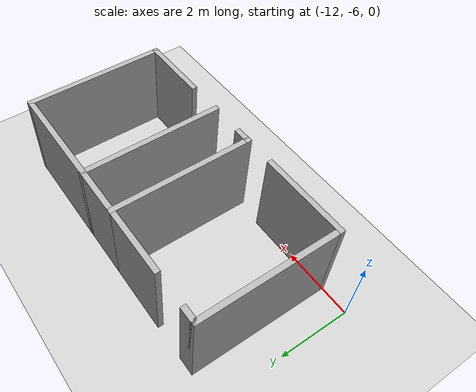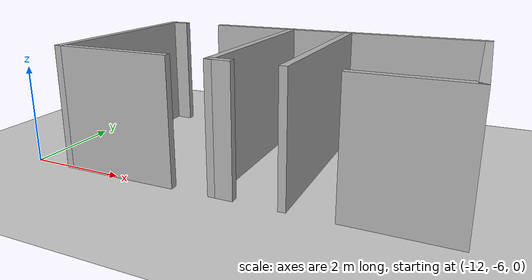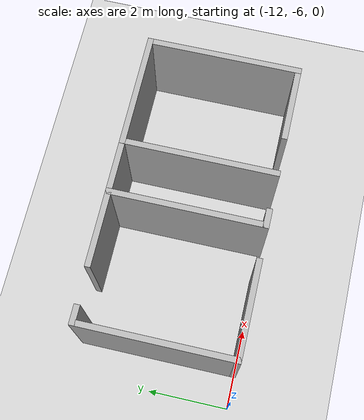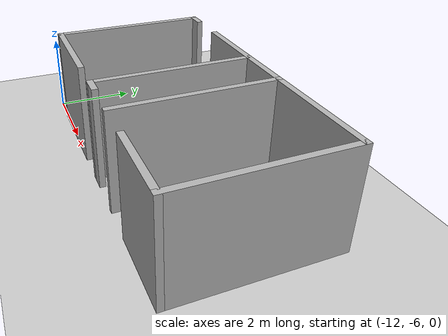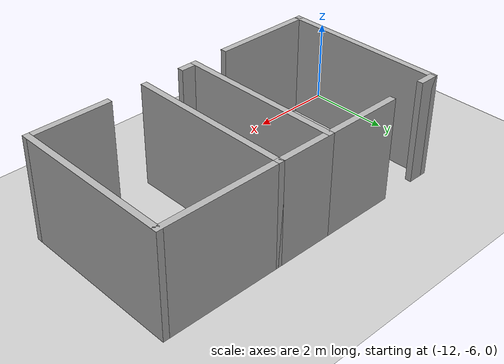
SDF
<?xml version="1.0" ?>
<sdf version="1.8">
  <world name="default">

    <plugin name="gz::sim::systems::Physics" filename="gz-sim-physics-system"/>
    <plugin name="gz::sim::systems::UserCommands" filename="gz-sim-user-commands-system"/>
    <plugin name="gz::sim::systems::SceneBroadcaster" filename="gz-sim-scene-broadcaster-system"/>
    <plugin name="gz::sim::systems::Sensors" filename="gz-sim-sensors-system">
      <render_engine>ogre2</render_engine>
    </plugin>

    <gravity>0 0 -9.8</gravity>
    <magnetic_field>6e-06 2.3e-05 -4.2e-05</magnetic_field>
    <atmosphere type="adiabatic"/>

    <physics type="ode">
      <max_step_size>0.001</max_step_size>
      <real_time_factor>1</real_time_factor>
    </physics>

    <scene>
      <ambient>0.4 0.4 0.4 1</ambient>
      <background>0.7 0.7 0.7 1</background>
      <shadows>true</shadows>
    </scene>

    <light name="sun" type="directional">
      <cast_shadows>true</cast_shadows>
      <pose>0 0 10 0 0 0</pose>
      <diffuse>0.8 0.8 0.8 1</diffuse>
      <specular>0.1 0.1 0.1 1</specular>
      <attenuation>
        <range>1000</range>
        <constant>0.9</constant>
        <linear>0.01</linear>
        <quadratic>0.001</quadratic>
      </attenuation>
      <direction>-0.5 0.5 -1</direction>
    </light>

    <model name="ground_plane">
      <static>true</static>
      <link name="link">
        <collision name="collision">
          <geometry>
            <plane>
              <normal>0 0 1</normal>
              <size>100 100</size>
            </plane>
          </geometry>
          <surface>
            <friction>
              <ode>
                <mu>100</mu>
                <mu2>50</mu2>
              </ode>
            </friction>
          </surface>
        </collision>
        <visual name="visual">
          <geometry>
            <plane>
              <normal>0 0 1</normal>
              <size>100 100</size>
            </plane>
          </geometry>
          <material>
            <ambient>0.8 0.8 0.8 1</ambient>
            <diffuse>0.8 0.8 0.8 1</diffuse>
            <specular>0.8 0.8 0.8 1</specular>
          </material>
        </visual>
      </link>
    </model>

    <model name="cma_escritorio">
      <static>true</static>
      <pose>-7.395 -4.04 0 0 0 0</pose>

      <link name="Wall_11">
        <pose>-1.4 1.93 0 0 0 3.14159</pose>
        <collision name="Wall_11_Collision">
          <pose>0 0 1.25 0 0 0</pose>
          <geometry>
            <box>
              <size>2 0.15 2.5</size>
            </box>
          </geometry>
        </collision>
        <visual name="Wall_11_Visual">
          <pose>0 0 1.25 0 0 0</pose>
          <geometry>
            <box>
              <size>2 0.15 2.5</size>
            </box>
          </geometry>
          <material>
            <ambient>0.7 0.7 0.7 1</ambient>
            <diffuse>0.7 0.7 0.7 1</diffuse>
          </material>
        </visual>
      </link>

      <link name="Wall_2">
        <pose>0.875 0.005 0 0 0 1.5708</pose>
        <collision name="Wall_2_Collision">
          <pose>0 0 1.25 0 0 0</pose>
          <geometry>
            <box>
              <size>4 0.15 2.5</size>
            </box>
          </geometry>
        </collision>
        <visual name="Wall_2_Visual">
          <pose>0 0 1.25 0 0 0</pose>
          <geometry>
            <box>
              <size>4 0.15 2.5</size>
            </box>
          </geometry>
          <material>
            <ambient>0.7 0.7 0.7 1</ambient>
            <diffuse>0.7 0.7 0.7 1</diffuse>
          </material>
        </visual>
      </link>

      <link name="Wall_25">
        <pose>-2.55 -1.93 0 0 0 3.14159</pose>
        <collision name="Wall_25_Collision">
          <pose>0 0 1.25 0 0 0</pose>
          <geometry>
            <box>
              <size>2.5 0.15 2.5</size>
            </box>
          </geometry>
        </collision>
        <visual name="Wall_25_Visual">
          <pose>0 0 1.25 0 0 0</pose>
          <geometry>
            <box>
              <size>2.5 0.15 2.5</size>
            </box>
          </geometry>
          <material>
            <ambient>0.7 0.7 0.7 1</ambient>
            <diffuse>0.7 0.7 0.7 1</diffuse>
          </material>
        </visual>
      </link>

      <link name="Wall_26">
        <pose>-3.725 -0.005 0 0 0 1.5708</pose>
        <collision name="Wall_26_Collision">
          <pose>0 0 1.25 0 0 0</pose>
          <geometry>
            <box>
              <size>4 0.15 2.5</size>
            </box>
          </geometry>
        </collision>
        <visual name="Wall_26_Visual">
          <pose>0 0 1.25 0 0 0</pose>
          <geometry>
            <box>
              <size>4 0.15 2.5</size>
            </box>
          </geometry>
          <material>
            <ambient>0.7 0.7 0.7 1</ambient>
            <diffuse>0.7 0.7 0.7 1</diffuse>
          </material>
        </visual>
      </link>

      <link name="Wall_27">
        <pose>-3.55 1.92 0 0 0 0</pose>
        <collision name="Wall_27_Collision">
          <pose>0 0 1.25 0 0 0</pose>
          <geometry>
            <box>
              <size>0.5 0.15 2.5</size>
            </box>
          </geometry>
        </collision>
        <visual name="Wall_27_Visual">
          <pose>0 0 1.25 0 0 0</pose>
          <geometry>
            <box>
              <size>0.5 0.15 2.5</size>
            </box>
          </geometry>
          <material>
            <ambient>0.7 0.7 0.7 1</ambient>
            <diffuse>0.7 0.7 0.7 1</diffuse>
          </material>
        </visual>
      </link>

      <link name="Wall_3">
        <pose>2.3 1.93 0 0 0 0</pose>
        <collision name="Wall_3_Collision">
          <pose>0 0 1.25 0 0 0</pose>
          <geometry>
            <box>
              <size>3 0.15 2.5</size>
            </box>
          </geometry>
        </collision>
        <visual name="Wall_3_Visual">
          <pose>0 0 1.25 0 0 0</pose>
          <geometry>
            <box>
              <size>3 0.15 2.5</size>
            </box>
          </geometry>
          <material>
            <ambient>0.7 0.7 0.7 1</ambient>
            <diffuse>0.7 0.7 0.7 1</diffuse>
          </material>
        </visual>
      </link>

      <link name="Wall_4">
        <pose>3.725 0.005 0 0 0 -1.5708</pose>
        <collision name="Wall_4_Collision">
          <pose>0 0 1.25 0 0 0</pose>
          <geometry>
            <box>
              <size>4 0.15 2.5</size>
            </box>
          </geometry>
        </collision>
        <visual name="Wall_4_Visual">
          <pose>0 0 1.25 0 0 0</pose>
          <geometry>
            <box>
              <size>4 0.15 2.5</size>
            </box>
          </geometry>
          <material>
            <ambient>0.7 0.7 0.7 1</ambient>
            <diffuse>0.7 0.7 0.7 1</diffuse>
          </material>
        </visual>
      </link>

      <link name="Wall_5">
        <pose>2.8 -1.92 0 0 0 3.14159</pose>
        <collision name="Wall_5_Collision">
          <pose>0 0 1.25 0 0 0</pose>
          <geometry>
            <box>
              <size>2 0.15 2.5</size>
            </box>
          </geometry>
        </collision>
        <visual name="Wall_5_Visual">
          <pose>0 0 1.25 0 0 0</pose>
          <geometry>
            <box>
              <size>2 0.15 2.5</size>
            </box>
          </geometry>
          <material>
            <ambient>0.7 0.7 0.7 1</ambient>
            <diffuse>0.7 0.7 0.7 1</diffuse>
          </material>
        </visual>
      </link>

      <link name="Wall_7">
        <pose>0.2 1.93 0 0 0 3.14159</pose>
        <collision name="Wall_7_Collision">
          <pose>0 0 1.25 0 0 0</pose>
          <geometry>
            <box>
              <size>1.5 0.15 2.5</size>
            </box>
          </geometry>
        </collision>
        <visual name="Wall_7_Visual">
          <pose>0 0 1.25 0 0 0</pose>
          <geometry>
            <box>
              <size>1.5 0.15 2.5</size>
            </box>
          </geometry>
          <material>
            <ambient>0.7 0.7 0.7 1</ambient>
            <diffuse>0.7 0.7 0.7 1</diffuse>
          </material>
        </visual>
      </link>

      <link name="Wall_8">
        <pose>-0.475 0.005 0 0 0 -1.5708</pose>
        <collision name="Wall_8_Collision">
          <pose>0 0 1.25 0 0 0</pose>
          <geometry>
            <box>
              <size>4 0.15 2.5</size>
            </box>
          </geometry>
        </collision>
        <visual name="Wall_8_Visual">
          <pose>0 0 1.25 0 0 0</pose>
          <geometry>
            <box>
              <size>4 0.15 2.5</size>
            </box>
          </geometry>
          <material>
            <ambient>0.7 0.7 0.7 1</ambient>
            <diffuse>0.7 0.7 0.7 1</diffuse>
          </material>
        </visual>
      </link>

      <link name="Wall_9">
        <pose>-0.3 -1.92 0 0 0 0</pose>
        <collision name="Wall_9_Collision">
          <pose>0 0 1.25 0 0 0</pose>
          <geometry>
            <box>
              <size>0.5 0.15 2.5</size>
            </box>
          </geometry>
        </collision>
        <visual name="Wall_9_Visual">
          <pose>0 0 1.25 0 0 0</pose>
          <geometry>
            <box>
              <size>0.5 0.15 2.5</size>
            </box>
          </geometry>
          <material>
            <ambient>0.7 0.7 0.7 1</ambient>
            <diffuse>0.7 0.7 0.7 1</diffuse>
          </material>
        </visual>
      </link>

    </model>
  </world>
</sdf>
